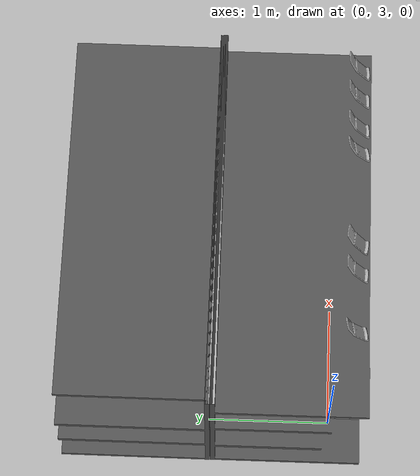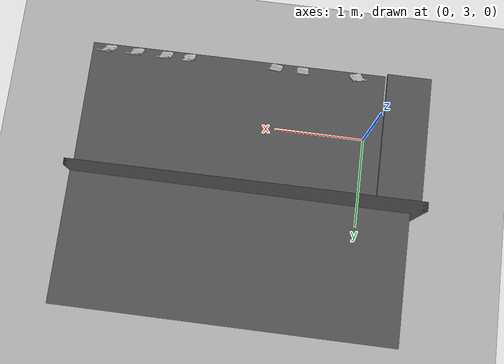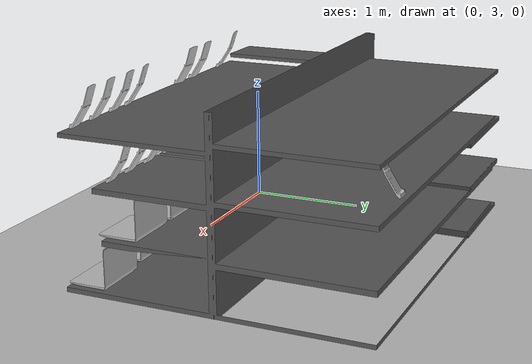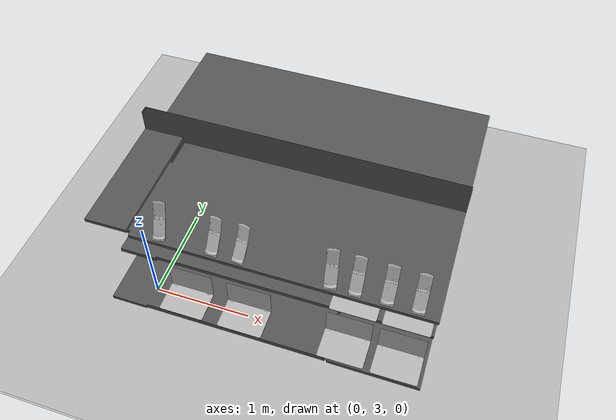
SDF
<sdf version="1.6">
 <world name="default">
  <scene><ambient>0.8 0.8 0.8 1.0</ambient><background>0 0 0</background><grid>false</grid></scene>
  <include><uri>model://sun</uri></include>
  <include><uri>model://ground_plane</uri></include>
  <include><uri>model://floor</uri><pose>0.002183 -0.581996 0.05 0 0 0</pose></include>
  <include><uri>model://shelve</uri><pose>0.0 4.0 0 0 0 0</pose></include>
  <include><uri>model://laptop</uri><name>laptop_3</name><pose>2.062621 3.349899 0.520278 0 0 0</pose></include>
  <include><uri>model://laptop</uri><name>laptop_4</name><pose>2.574236 3.349899 0.520278 0 0 0</pose></include>
  <include><uri>model://laptop</uri><name>laptop_5</name><pose>0.397940 3.05274 0.123942 0 0 0</pose></include>
  <include><uri>model://laptop</uri><name>laptop_6</name><pose>1.016112 3.05274 0.123942 0 0 0</pose></include>
  <include><uri>model://laptop</uri><name>laptop_7</name><pose>2.040844 3.05274 0.123942 0 0 0</pose></include>
  <include><uri>model://laptop</uri><name>laptop_8</name><pose>2.567354 3.05951 0.091985 0 0 0</pose></include>
  <include>
   <uri>model://phone</uri>
   <name>phone_1</name>
   <pose>0.340504 2.741644 1.2853 0 -0 0.144797</pose>
  </include>
  <include>
   <uri>model://phone</uri>
   <name>phone_3</name>
   <pose>0.827247 2.73876 1.2853 0 -0 -0.080728</pose>
  </include>
  <include>
   <uri>model://phone</uri>
   <name>phone_4</name>
   <pose>1.067209 2.73876 1.2853 0 -0 -0.176848</pose>
  </include>
  <include>
   <uri>model://phone</uri>
   <name>phone_5</name>
   <pose>1.902125 2.73876 1.2853 0 -0 0.132236</pose>
  </include>
  <include><uri>model://phone</uri><name>phone_6</name><pose>2.111089 2.73876 1.2853 0 -0 0</pose></include>
  <include><uri>model://phone</uri><name>phone_7</name><pose>2.383449 2.73876 1.2853 0 -0 0</pose></include>
  <include><uri>model://phone</uri><name>phone_8</name><pose>2.643965 2.73876 1.2853 0 -0 0</pose></include>
  <include><uri>model://phone</uri><name>phone_10</name><pose>0.570996 3.028773 0.903941 0 -0 0</pose></include>
  <include>
   <uri>model://phone</uri>
   <name>phone_12</name>
   <pose>1.067209  3.028773 0.903941 0 -0 -0.098005</pose>
  </include>
  <include><uri>model://phone</uri><name>phone_13</name><pose>1.808462 3.028773 0.903941 0 -0 0</pose></include>
  <include><uri>model://phone</uri><name>phone_14</name><pose>2.111089 3.028773 0.903941 0 -0 0</pose></include>
  <include><uri>model://phone</uri><name>phone_15</name><pose>2.383449 3.028773 0.903941 0 -0 0</pose></include>
  <include><uri>model://phone</uri><name>phone_16</name><pose>2.643965 3.028773 0.903941 0 -0 0</pose></include>
  <include>
   <uri>model://phone</uri>
   <name>phone_misplaced</name>
   <pose>2.235640 5.185982 0.937108 0 -0 3.106321</pose>
  </include>
  <light name="user_point_light_0" type="point">
   <pose>0.30294 6 2 0 -0 0</pose>
   <diffuse>0.5 0.5 0.5 1</diffuse>
   <specular>0.1 0.1 0.1 1</specular>
   <attenuation>
    <range>20</range>
    <constant>0.6</constant>
    <linear>0.02</linear>
    <quadratic>0.001</quadratic>
   </attenuation>
   <cast_shadows>0</cast_shadows>
   <direction>0 0 0</direction>
  </light>
  <plugin name="gazebo_ros_state" filename="libgazebo_ros_state.so">
   <ros><namespace>/gazebo</namespace></ros>
   <update_rate>5.0</update_rate>
  </plugin>
 </world>
</sdf>

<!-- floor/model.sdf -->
<sdf version='1.4'>
  <model name='floor'>
    <static>1</static>
      <link name='link'>
        <collision name='collision'>
          <geometry>
            <plane>
              <normal>0 0 1</normal>
              <size>20 20</size>
            </plane>
          </geometry>
          <surface>
            <friction>
              <ode>
                <mu>100</mu>
                <mu2>50</mu2>
              </ode>
            </friction>
            <contact>
              <ode/>
            </contact>
            <bounce/>
          </surface>
          <max_contacts>10</max_contacts>
        </collision>

        <visual name='visual'>
          <cast_shadows>0</cast_shadows>
          <geometry>
            <mesh>
            <uri>model://floor/meshes/floor.dae</uri>
          </mesh>
          </geometry>
        </visual>
        <self_collide>0</self_collide>
        <kinematic>0</kinematic>
        <gravity>1</gravity>
      </link>
      <pose>0 0 0 0 -0 0</pose>
  </model>
</sdf>

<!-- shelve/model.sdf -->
<sdf version='1.6'>
  <model name='shelve'>
    <link name='link_1'>
      <visual name='visual'>
        <pose frame=''>0 0 0 0 0 0</pose>
        <geometry>
          <mesh>
            <uri>model://shelve/meshes/final_shelve.dae</uri>
            <scale>0.9 0.9 0.9</scale>
          </mesh>
        </geometry>
        <cast_shadows>0</cast_shadows>
        <transparency>0</transparency>
      </visual>

    </link>

    <static>1</static>
    <allow_auto_disable>1</allow_auto_disable>
  </model>
</sdf>

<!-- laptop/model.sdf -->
<sdf version='1.6'>
  <model name='laptop'>
    <link name='link_1'>
      <visual name='visual'>
        <pose frame=''>0 0 0 0 0 0</pose>
        <geometry>
          <mesh>
            <uri>model://laptop/meshes/laptop.dae</uri>
            <scale>1.0 1.0 1.0</scale>
          </mesh>
        </geometry>
        <cast_shadows>0</cast_shadows>
        <transparency>0</transparency>
      </visual>

    </link>

    <static>1</static>
    <allow_auto_disable>1</allow_auto_disable>
  </model>
</sdf>

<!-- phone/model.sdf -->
<sdf version='1.6'>
  <model name='phone'>
    <link name='link_2'>
      <visual name='visual'>
        <pose frame=''>0 0 0 0 0 0</pose>
        <geometry>
          <mesh>
            <uri>model://phone/meshes/phone.dae</uri>
            <scale>1.0 1.0 1.0</scale>
          </mesh>
        </geometry>
        <cast_shadows>0</cast_shadows>
        <transparency>0</transparency>
      </visual>

    </link>

    <static>1</static>
    <allow_auto_disable>1</allow_auto_disable>
  </model>
</sdf>
